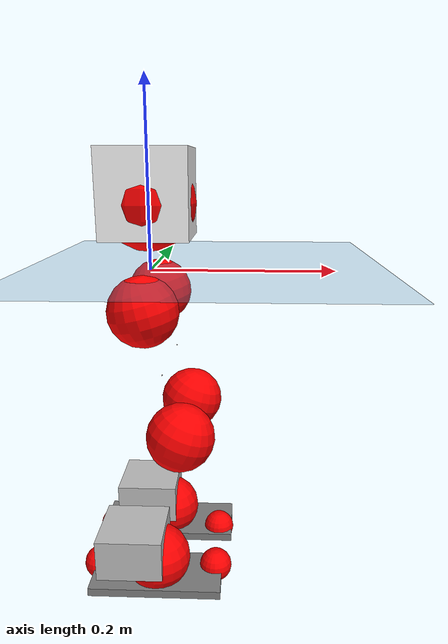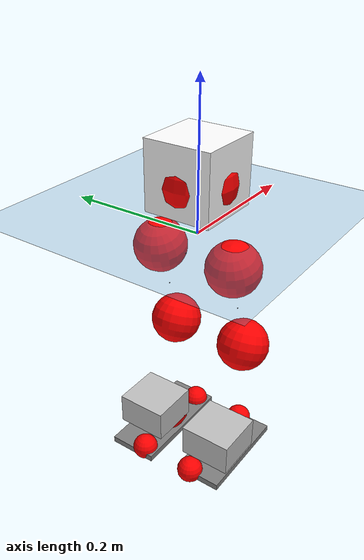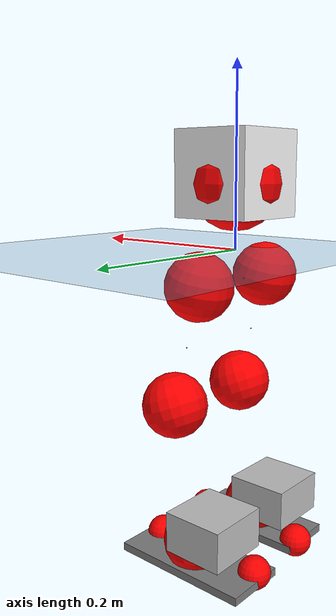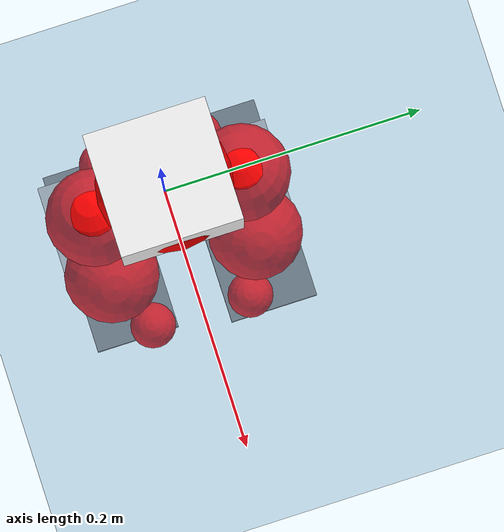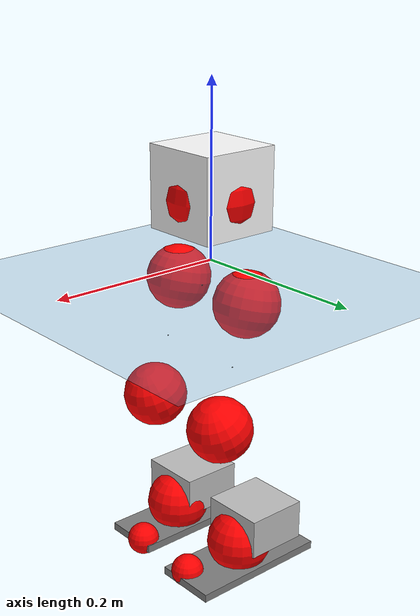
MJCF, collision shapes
<mujoco model="pi_12dof_release_v1">
  <compiler angle="radian" assetdir="assets" balanceinertia="true" inertiafromgeom="false"/>

  <option timestep="0.005" density="1.2" viscosity="2e-05"/>

  <size nkey="1"/>

  <visual>
    <quality shadowsize="8192"/>
    <map shadowclip="0.5"/>
  </visual>

  <default>
    <default class="/">
      <joint armature="0.01" damping="0.01" frictionloss="0.01"/>
      <geom contype="0" conaffinity="0" group="1" solref="-1000 -80"/>
      <site size="0.01 0.005 0.005" group="5"/>
      <general forcelimited="true" biastype="affine" gainprm="20" biasprm="0 -20 -0.5"/>
      <default class="foot">
        <geom size="0.0845 0.036 0.005" type="box" condim="6" group="4" priority="1" friction="0.9 0.2 0.2" solimp="0.015 1 0.005"/>
      </default>
      <default class="reward_collision_sphere">
        <geom group="5" rgba="1 0 0 1"/>
      </default>
    </default>
  </default>

  <asset>
    <texture type="skybox" colorspace="auto" name="//unnamed_texture_0" builtin="gradient" rgb1="0.95 0.95 0.95" rgb2="0.95 0.95 0.95" width="100" height="600"/>
    <texture type="2d" colorspace="auto" name="texplane" builtin="checker" rgb1="0.345 0.575 0.748" rgb2="0.345 0.575 0.748" markrgb="1 1 1" width="512" height="512"/>
    <material name="MatPlane" class="/" texture="texplane" texuniform="true" texrepeat="2 2" specular="0.9"/>
    <mesh name="baselink_1" class="/" file="baselink_1.STL"/>
    <mesh name="r_hip_pitch_link" class="/" file="r_hip_pitch_link.STL"/>
    <mesh name="r_hip_roll_link" class="/" file="r_hip_roll_link.STL"/>
    <mesh name="r_thigh_link" class="/" file="r_thigh_link.STL"/>
    <mesh name="r_calf_link" class="/" file="r_calf_link.STL"/>
    <mesh name="r_ankle_pitch_link" class="/" file="r_ankle_pitch_link.STL"/>
    <mesh name="r_ankle_roll_link" class="/" file="r_ankle_roll_link.STL"/>
    <mesh name="l_hip_pitch_link" class="/" file="l_hip_pitch_link.STL"/>
    <mesh name="l_hip_roll_link" class="/" file="l_hip_roll_link.STL"/>
    <mesh name="l_thigh_link" class="/" file="l_thigh_link.STL"/>
    <mesh name="l_calf_link" class="/" file="l_calf_link.STL"/>
    <mesh name="l_ankle_pitch_link" class="/" file="l_ankle_pitch_link.STL"/>
    <mesh name="l_ankle_roll_link" class="/" file="l_ankle_roll_link.STL"/>
  </asset>

  <worldbody>
    <geom name="floor" class="/" size="100 100 0.125" type="plane" group="0" material="MatPlane"/>
    <light name="toplight_shadow" class="/" pos="0 0 5" dir="0.0990148 0.0990148 -0.990148" type="directional" ambient="0.04 0.04 0.04" diffuse="0.55 0.55 0.55" specular="0.12 0.12 0.12"/>
    <light name="toplight_fill" class="/" pos="0 0 5" dir="0.0990148 0.0990148 -0.990148" type="directional" castshadow="false" ambient="0.04 0.04 0.04" diffuse="0.3 0.3 0.3" specular="0.08 0.08 0.08"/>
    <body name="trunk" pos="0.000125225 0.000728394 -0.000301353" quat="1 5.77734e-06 2.79559e-06 -1.72744e-05">
      <inertial pos="0.00244948 -0.000156163 0.041426" quat="0.697733 0.011651 0.00925296 0.716203" mass="1.74823" diaginertia="0.0105332 0.00212451 0.00475846"/>
      <joint name="//unnamed_joint_0" type="free"/>
      <geom name="//unnamed_geom_1" class="/" type="mesh" density="0" rgba="1 1 1 1" mesh="baselink_1"/>
      <geom name="//unnamed_geom_2" class="/" size="0.0464597 0.0464597 0.0464597" pos="0 0 0.0821422" type="box" rgba="1 1 1 1"/>
      <geom name="//unnamed_geom_3" class="reward_collision_sphere" size="0.0511057" pos="0 0 0.0718745"/>
      <site name="imu" class="/" pos="-0.00394037 -0.00383726 0.00366028" size="0.00929194"/>
      <camera name="track" class="/" pos="0 -1.49552 0" quat="0.707107 0.707107 0 0" mode="trackcom"/>
      <camera name="ego_camera" class="/" pos="0.0759783 0 0.18482" quat="-0.5 -0.5 0.5 0.5"/>
      <body name="r_hip_pitch_link" pos="-0.000577761 -0.0160749 -0.0332941" quat="0.992157 3.43781e-05 -0.124999 9.2242e-05">
        <inertial pos="0.00128421 -0.0418139 -0.000887794" quat="-0.0190185 0.706353 -0.0271947 0.707082" mass="0.298873" diaginertia="0.000115764 2.32205e-05 9.51957e-05"/>
        <joint name="r_hip_pitch_joint" class="/" pos="0 0 0" axis="0.000197846 -1 0.000265852" range="-1.75147 1.26489" armature="0.00938872" damping="0.0128234" frictionloss="0.00906559"/>
        <geom name="//unnamed_geom_4" class="/" type="mesh" density="0" rgba="0.75294 0.75294 0.75294 1" mesh="r_hip_pitch_link"/>
        <geom name="//unnamed_geom_5" class="/" size="0.000464597 0.000464597 0.000464597" type="box" rgba="0.75294 0.75294 0.75294 1"/>
        <body name="r_hip_roll_link" pos="0.000252267 -0.0405081 0.000420994" quat="1 -0.000168728 -6.68728e-05 -0.000376929">
          <inertial pos="-0.0019602 -0.00100646 -0.063157" quat="0.705201 -0.080685 -0.0826837 0.699532" mass="0.311366" diaginertia="0.000354885 6.4921e-05 0.000145725"/>
          <joint name="r_hip_roll_joint" class="/" pos="0 0 0" axis="-0.999994 0.00181823 0.00310067" range="-0.123589 0.48563" armature="0.00968895" damping="0.00280593" frictionloss="0.0094037"/>
          <geom name="//unnamed_geom_6" class="/" type="mesh" density="0" rgba="0.75294 0.75294 0.75294 1" mesh="r_hip_roll_link"/>
          <geom name="//unnamed_geom_7" class="/" size="0.000464597 0.000464597 0.000464597" type="box" rgba="0.75294 0.75294 0.75294 1"/>
          <geom name="//unnamed_geom_8" class="reward_collision_sphere" size="0.0371678"/>
          <body name="r_thigh_link" pos="8.30202e-05 0.000732593 -0.0706325" quat="1 -0.000231534 0.000325828 0.000172178">
            <inertial pos="-0.000539743 0.000546663 -0.0492555" quat="0.736931 0.675968 -7.56258e-05 -4.85463e-05" mass="0.0903967" diaginertia="0.00013436 2.21415e-05 6.57308e-05"/>
            <joint name="r_thigh_joint" class="/" pos="0 0 0" axis="0.000168164 -0.000377793 -1" range="-0.284593 0.596548" armature="0.00940236" damping="0.00279746" frictionloss="0.00929838"/>
            <geom name="//unnamed_geom_9" class="/" type="mesh" density="0" rgba="0.75294 0.75294 0.75294 1" mesh="r_thigh_link"/>
            <geom name="//unnamed_geom_10" class="/" size="0.000464597 0.000464597 0.000464597" type="box" rgba="0.75294 0.75294 0.75294 1"/>
            <body name="r_calf_link" pos="0.000408045 -0.00191526 -0.0718733" quat="0.947656 2.2287e-05 0.319292 -2.07428e-05">
              <inertial pos="-0.000100694 -0.000205541 -0.0712251" quat="0.999984 -0.00324825 0.00103559 0.00447065" mass="0.652908" diaginertia="0.00372588 0.000807153 0.000196823"/>
              <joint name="r_calf_joint" class="/" pos="0 0 0" axis="-0.000283874 -0.999991 -0.00421976" range="-1.63556 0.634576" armature="0.00906883" damping="0.00833683" frictionloss="0.00903279"/>
              <geom name="//unnamed_geom_11" class="/" type="mesh" density="0" rgba="0.75294 0.75294 0.75294 1" mesh="r_calf_link"/>
              <geom name="//unnamed_geom_12" class="/" size="0.000464597 0.000464597 0.000464597" type="box" rgba="0.75294 0.75294 0.75294 1"/>
              <geom name="//unnamed_geom_13" class="reward_collision_sphere" size="0.0371678"/>
              <body name="r_ankle_pitch_link" pos="0.000455333 0.00117425 -0.144115" quat="0.980045 -0.000172037 -0.198777 -3.69892e-05">
                <inertial pos="0.00554918 0.00212688 9.17795e-05" quat="0.00286254 0.709194 -0.00508584 0.70499" mass="0.13869" diaginertia="0.000324832 5.15058e-05 0.00013585"/>
                <joint name="r_ankle_pitch_joint" class="/" pos="0 0 0" axis="0.00245718 -0.999997 -0.000236986" range="-1.30852 0.502924" armature="0.00924271" damping="0.00473374" frictionloss="0.00925955"/>
                <geom name="//unnamed_geom_14" class="/" type="mesh" density="0" rgba="0.75294 0.75294 0.75294 1" mesh="r_ankle_pitch_link"/>
                <geom name="//unnamed_geom_15" class="/" size="0.0362386 0.0371678 0.0232299" type="box" rgba="0.75294 0.75294 0.75294 1"/>
                <body name="r_ankle_roll_link" pos="0.0769131 0.00285096 0.000630861" quat="1 3.25484e-05 -0.000126721 -5.23944e-05">
                  <inertial pos="-0.0243303 3.93729e-05 -0.0157817" quat="0.558279 0.433605 0.435902 0.557046" mass="0.414262" diaginertia="0.0012137 0.000241213 0.000324342"/>
                  <joint name="r_ankle_roll_joint" class="/" pos="0 0 0" axis="-1 0.000325524 0.000217688" range="-0.15845 0.151322" armature="0.00929572" damping="0.00784549" frictionloss="0.00957673"/>
                  <geom name="//unnamed_geom_16" class="/" type="mesh" density="0" rgba="0.75294 0.75294 0.75294 1" mesh="r_ankle_roll_link"/>
                  <geom name="//unnamed_geom_17" class="/" type="mesh" rgba="0.75294 0.75294 0.75294 1" mesh="r_ankle_roll_link"/>
                  <geom name="right_foot" class="foot" size="0.0740109 0.034098 0.00464052" pos="-0.0516652 0 -0.0451782"/>
                  <geom name="//unnamed_geom_19" class="reward_collision_sphere" size="0.0371678" pos="-0.0506522 0 -0.0205356"/>
                  <geom name="//unnamed_geom_20" class="reward_collision_sphere" size="0.0185839" pos="0.0151957 0.0149552 -0.0410711"/>
                  <geom name="//unnamed_geom_21" class="reward_collision_sphere" size="0.0185839" pos="-0.121565 0.0149552 -0.0410711"/>
                  <site name="right_foot" class="foot" pos="-0.0516652 0 -0.0451782" size="0.00929194"/>
                </body>
              </body>
            </body>
          </body>
        </body>
      </body>
      <body name="l_hip_pitch_link" pos="6.12413e-06 0.0173168 -0.0335206" quat="0.992209 -0.000123735 -0.124587 3.50499e-05">
        <inertial pos="0.00107648 0.0405462 -0.000600322" quat="-0.0369191 0.706479 0.0297735 0.706143" mass="0.313425" diaginertia="0.000136719 2.45204e-05 0.000114864"/>
        <joint name="l_hip_pitch_joint" class="/" pos="0 0 0" axis="9.78185e-05 1 0.000299717" range="-1.24577 1.75288" armature="0.00940548" damping="0.00461643" frictionloss="0.00888235"/>
        <geom name="//unnamed_geom_22" class="/" type="mesh" density="0" rgba="0.75294 0.75294 0.75294 1" mesh="l_hip_pitch_link"/>
        <geom name="//unnamed_geom_23" class="/" size="0.000464597 0.000464597 0.000464597" type="box" rgba="0.75294 0.75294 0.75294 1"/>
        <body name="l_hip_roll_link" pos="0.00107229 0.0419481 -0.00042031" quat="1 2.61103e-05 0.000140584 6.98336e-05">
          <inertial pos="-0.00158344 0.000122465 -0.0630862" quat="0.698144 -0.0767247 -0.0747041 0.707903" mass="0.31459" diaginertia="0.000353616 6.4777e-05 0.000147298"/>
          <joint name="l_hip_roll_joint" class="/" pos="0 0 0" axis="-0.999987 0.0012236 0.00502436" range="-0.502864 0.119864" armature="0.00899961" damping="0.00607" frictionloss="0.00931232"/>
          <geom name="//unnamed_geom_24" class="/" type="mesh" density="0" rgba="0.75294 0.75294 0.75294 1" mesh="l_hip_roll_link"/>
          <geom name="//unnamed_geom_25" class="/" size="0.000464597 0.000464597 0.000464597" type="box" rgba="0.75294 0.75294 0.75294 1"/>
          <geom name="//unnamed_geom_26" class="reward_collision_sphere" size="0.0371678"/>
          <body name="l_thigh_link" pos="0.00100649 -0.00102203 -0.0714029" quat="1 -1.60727e-05 -0.000182205 -4.66093e-05">
            <inertial pos="0.00027802 -0.0016025 -0.0494104" quat="0.67522 0.737616 -2.17347e-05 -0.000606577" mass="0.0885256" diaginertia="0.000131384 2.19389e-05 6.54115e-05"/>
            <joint name="l_thigh_joint" class="/" pos="0 0 0" axis="-0.000570989 0.000566755 -1" range="-0.601699 0.299898" armature="0.00969919" damping="0.00267514" frictionloss="0.00925136"/>
            <geom name="//unnamed_geom_27" class="/" type="mesh" density="0" rgba="0.75294 0.75294 0.75294 1" mesh="l_thigh_link"/>
            <geom name="//unnamed_geom_28" class="/" size="0.000464597 0.000464597 0.000464597" type="box" rgba="0.75294 0.75294 0.75294 1"/>
            <body name="l_calf_link" pos="-9.71082e-05 0.000349688 -0.0716526" quat="0.947602 -0.000155566 0.319453 0.000119503">
              <inertial pos="0.000710612 0.00167125 -0.0711636" quat="0.999971 0.00270041 3.09829e-05 0.00712363" mass="0.64622" diaginertia="0.00368392 0.000810581 0.000197266"/>
              <joint name="l_calf_joint" class="/" pos="0 0 0" axis="0.000112174 0.999988 -0.00482025" stiffness="0.00320305" range="-0.640537 1.65328" armature="0.00948944" damping="0.00965856" frictionloss="0.00936846"/>
              <geom name="//unnamed_geom_29" class="/" type="mesh" density="0" rgba="0.75294 0.75294 0.75294 1" mesh="l_calf_link"/>
              <geom name="//unnamed_geom_30" class="/" size="0.000464597 0.000464597 0.000464597" type="box" rgba="0.75294 0.75294 0.75294 1"/>
              <geom name="//unnamed_geom_31" class="reward_collision_sphere" size="0.0371678"/>
              <body name="l_ankle_pitch_link" pos="0.000486858 9.59471e-05 -0.143991" quat="0.980067 1.28765e-05 -0.198666 7.455e-06">
                <inertial pos="0.00504057 -0.000384033 -0.000795978" quat="-0.00235405 0.70551 0.00193217 0.708694" mass="0.142493" diaginertia="0.000330393 5.24801e-05 0.0001381"/>
                <joint name="l_ankle_pitch_joint" class="/" pos="0 0 0" axis="0.000129617 0.999998 -0.00176838" stiffness="4.64658e-05" range="-0.49423 1.28428" armature="0.00917459" damping="0.00894743" frictionloss="0.00927866"/>
                <geom name="//unnamed_geom_32" class="/" type="mesh" density="0" rgba="0.75294 0.75294 0.75294 1" mesh="l_ankle_pitch_link"/>
                <geom name="//unnamed_geom_33" class="/" size="0.0362386 0.0371678 0.0232299" type="box" rgba="0.75294 0.75294 0.75294 1"/>
                <body name="l_ankle_roll_link" pos="0.0752551 -0.000144172 -0.000603071" quat="1 1.69227e-05 9.6722e-05 0.000306757">
                  <inertial pos="-0.024404 -0.000539487 -0.0150781" quat="0.559901 0.430684 0.434142 0.559055" mass="0.417745" diaginertia="0.00120758 0.00024013 0.000325256"/>
                  <joint name="l_ankle_roll_joint" class="/" pos="0 0 0" axis="-0.999993 0.00122918 0.00344318" stiffness="0.00191021" range="-0.145311 0.168313" armature="0.00931756" damping="0.00792765" frictionloss="0.0094887"/>
                  <geom name="//unnamed_geom_34" class="/" type="mesh" density="0" rgba="0.75294 0.75294 0.75294 1" mesh="l_ankle_roll_link"/>
                  <geom name="//unnamed_geom_35" class="/" type="mesh" rgba="0.75294 0.75294 0.75294 1" mesh="l_ankle_roll_link"/>
                  <geom name="left_foot" class="foot" size="0.0832939 0.036102 0.00461617" pos="-0.0516652 0 -0.0451782"/>
                  <geom name="//unnamed_geom_37" class="reward_collision_sphere" size="0.0371678" pos="-0.0506522 0 -0.0205356"/>
                  <geom name="//unnamed_geom_38" class="reward_collision_sphere" size="0.0185839" pos="0.0151957 -0.0149552 -0.0410711"/>
                  <geom name="//unnamed_geom_39" class="reward_collision_sphere" size="0.0185839" pos="-0.121565 -0.0149552 -0.0410711"/>
                  <site name="left_foot" class="foot" pos="-0.0516652 0 -0.0451782" size="0.00929194"/>
                </body>
              </body>
            </body>
          </body>
        </body>
      </body>
    </body>
  </worldbody>

  <contact>
    <pair class="/" geom1="floor" geom2="right_foot" name="//unnamed_contact_1"/>
    <pair class="/" geom1="floor" geom2="left_foot" name="//unnamed_contact_0"/>
  </contact>

  <actuator>
    <general name="r_hip_pitch_joint" class="/" joint="r_hip_pitch_joint" forcerange="-19.1939 19.1939" gainprm="19.0333" biasprm="0 -19.0333 -0.46223"/>
    <general name="r_hip_roll_joint" class="/" joint="r_hip_roll_joint" forcerange="-19.5683 19.5683" gainprm="19.0333" biasprm="0 -19.0333 -0.46223"/>
    <general name="r_thigh_joint" class="/" joint="r_thigh_joint" forcerange="-18.9053 18.9053" gainprm="19.0333" biasprm="0 -19.0333 -0.46223"/>
    <general name="r_calf_joint" class="/" joint="r_calf_joint" forcerange="-19.6846 19.6846" gainprm="19.0333" biasprm="0 -19.0333 -0.46223"/>
    <general name="r_ankle_pitch_joint" class="/" joint="r_ankle_pitch_joint" forcerange="-19.5344 19.5344" gainprm="19.0333" biasprm="0 -19.0333 -0.46223"/>
    <general name="r_ankle_roll_joint" class="/" joint="r_ankle_roll_joint" forcerange="-19.5444 19.5444" gainprm="19.0333" biasprm="0 -19.0333 -0.46223"/>
    <general name="l_hip_pitch_joint" class="/" joint="l_hip_pitch_joint" forcerange="-20.0705 20.0705" gainprm="19.0333" biasprm="0 -19.0333 -0.46223"/>
    <general name="l_hip_roll_joint" class="/" joint="l_hip_roll_joint" forcerange="-20.1688 20.1688" gainprm="19.0333" biasprm="0 -19.0333 -0.46223"/>
    <general name="l_thigh_joint" class="/" joint="l_thigh_joint" forcerange="-19.2563 19.2563" gainprm="19.0333" biasprm="0 -19.0333 -0.46223"/>
    <general name="l_calf_joint" class="/" joint="l_calf_joint" forcerange="-19.584 19.584" gainprm="19.0333" biasprm="0 -19.0333 -0.46223"/>
    <general name="l_ankle_pitch_joint" class="/" joint="l_ankle_pitch_joint" forcerange="-19.5647 19.5647" gainprm="19.0333" biasprm="0 -19.0333 -0.46223"/>
    <general name="l_ankle_roll_joint" class="/" joint="l_ankle_roll_joint" forcerange="-18.864 18.864" gainprm="19.0333" biasprm="0 -19.0333 -0.46223"/>
  </actuator>

  <sensor>
    <gyro site="imu" name="imu_angular_velocity"/>
    <velocimeter site="imu" name="imu_linear_velocity"/>
    <framelinvel objtype="site" objname="left_foot" name="left_foot_global_linear_velocity"/>
    <framelinvel objtype="site" objname="right_foot" name="right_foot_global_linear_velocity"/>
  </sensor>

  <keyframe>
    <key name="home" qpos="0 0 0.291 1 0 0 0 0.4 0 0 -0.8 0.4 0 -0.4 0 0 0.8 -0.4 0"/>
  </keyframe>
</mujoco>
